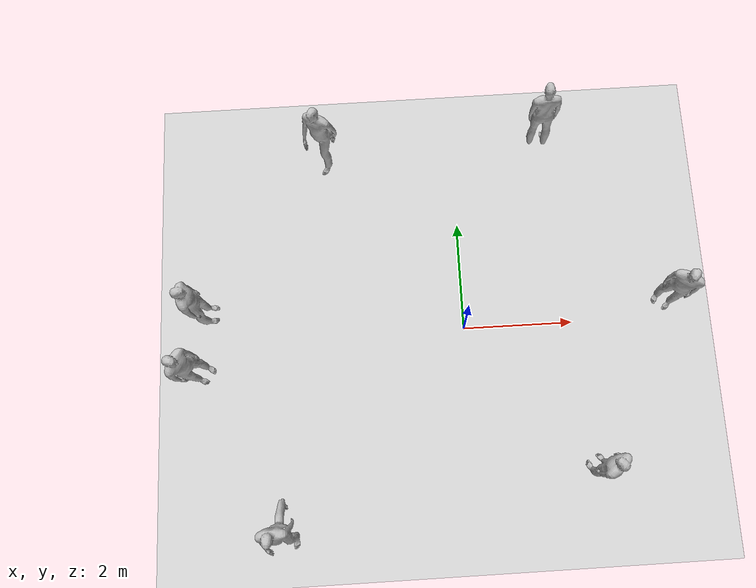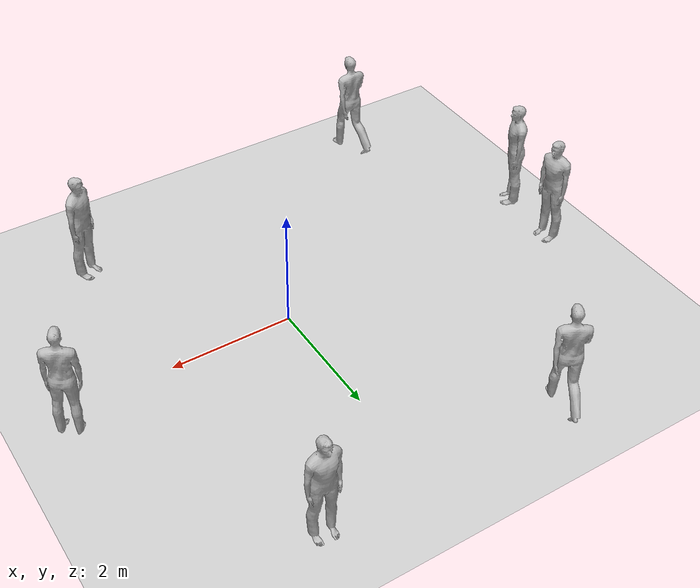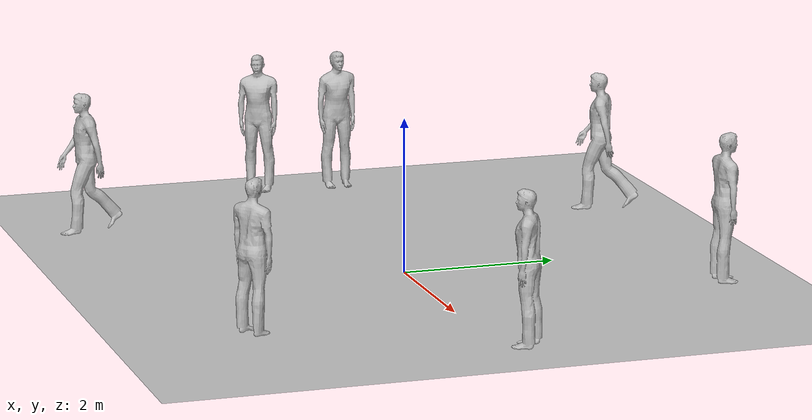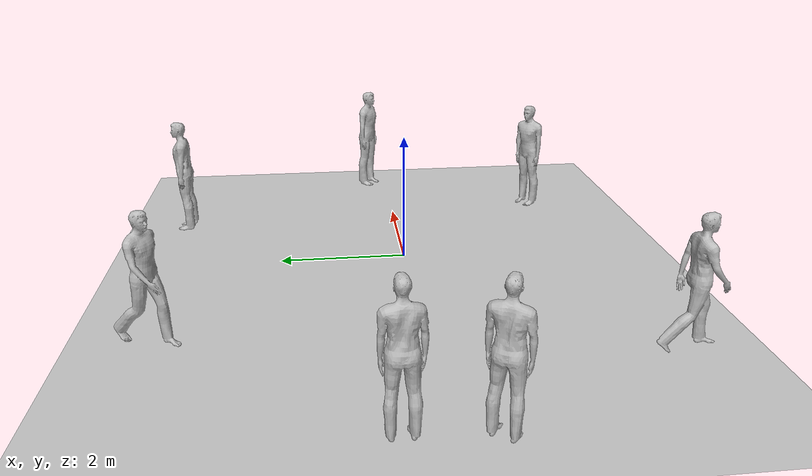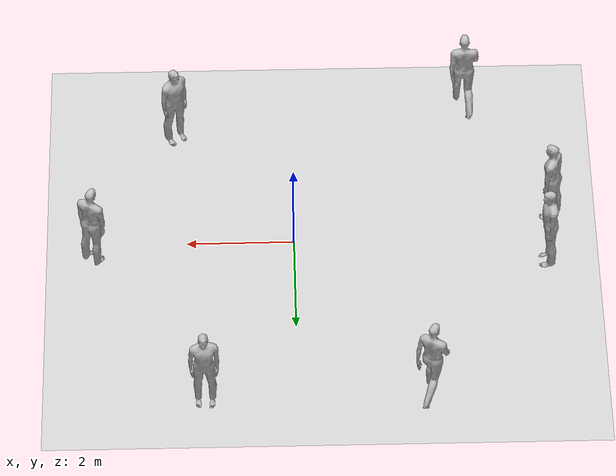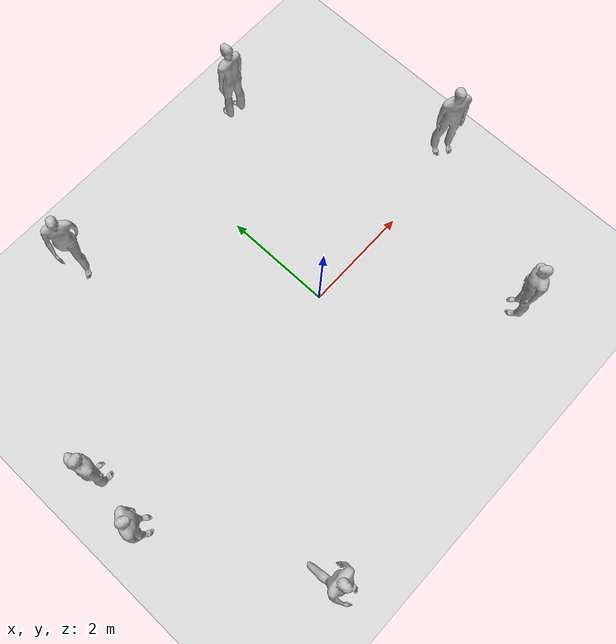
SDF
<sdf version="1.7">
 <world name="default">
  <light name="sun" type="directional">
   <pose>0 0 10 0 -0 0</pose>
   <diffuse>0.8 0.8 0.8 1</diffuse>
   <specular>0.2 0.2 0.2 1</specular>
   <attenuation>
    <range>1000</range>
    <constant>0.9</constant>
    <linear>0.01</linear>
    <quadratic>0.001</quadratic>
   </attenuation>
   <direction>-0.5 0.1 -0.9</direction>
   <spot><inner_angle>0</inner_angle><outer_angle>0</outer_angle><falloff>0</falloff></spot>
  </light>
  <model name="ground_plane">
   <static>1</static>
   <link name="link">
    <collision name="collision">
     <geometry><plane><normal>0 0 1</normal><size>100 100</size></plane></geometry>
     <surface><friction><ode><mu>100</mu><mu2>50</mu2></ode></friction></surface>
    </collision>
    <visual name="visual">
     <cast_shadows>0</cast_shadows>
     <geometry><plane><normal>0 0 1</normal><size>100 100</size></plane></geometry>
     <material>
      <script><uri>file://media/materials/scripts/gazebo.material</uri><name>Gazebo/Grey</name></script>
     </material>
    </visual>
   </link>
  </model>
  <gravity>0 0 -9.8</gravity>
  <magnetic_field>6e-06 2.3e-05 -4.2e-05</magnetic_field>
  <atmosphere type="adiabatic"/>
  <physics type="ode">
   <max_step_size>0.001</max_step_size>
   <real_time_factor>1</real_time_factor>
   <real_time_update_rate>1000</real_time_update_rate>
  </physics>
  <scene><ambient>0.4 0.4 0.4 1</ambient><background>0.7 0.7 0.7 1</background><shadows>1</shadows></scene>
  <spherical_coordinates>
   <surface_model>EARTH_WGS84</surface_model>
   <latitude_deg>0</latitude_deg>
   <longitude_deg>0</longitude_deg>
   <elevation>0</elevation>
   <heading_deg>0</heading_deg>
  </spherical_coordinates>
  <model name="person_standing">
   <link name="link">
    <inertial>
     <pose>0 -0.1 0.95 0 -0 0</pose>
     <mass>80</mass>
     <inertia><ixx>24.88</ixx><ixy>0</ixy><ixz>0</ixz><iyy>25.73</iyy><iyz>0</iyz><izz>2.48</izz></inertia>
    </inertial>
    <collision name="bottom">
     <pose>0 -0.1 0.01 0 -0 0</pose>
     <geometry><box><size>0.5 0.35 0.02</size></box></geometry>
    </collision>
    <collision name="person">
     <pose>0 0 0.02 0.04 -0 0</pose>
     <geometry><mesh><uri>model://person_standing/meshes/standing.dae</uri></mesh></geometry>
    </collision>
    <visual name="visual">
     <pose>0 0 0.02 0.04 -0 0</pose>
     <geometry><mesh><uri>model://person_standing/meshes/standing.dae</uri></mesh></geometry>
    </visual>
   </link>
   <pose>1.66247 3.60432 -1e-06 -1e-06 -1e-06 3.10091</pose>
  </model>
  <model name="person_standing_0">
   <link name="link">
    <inertial>
     <pose>0 -0.1 0.95 0 -0 0</pose>
     <mass>80</mass>
     <inertia><ixx>24.88</ixx><ixy>0</ixy><ixz>0</ixz><iyy>25.73</iyy><iyz>0</iyz><izz>2.48</izz></inertia>
    </inertial>
    <collision name="bottom">
     <pose>0 -0.1 0.01 0 -0 0</pose>
     <geometry><box><size>0.5 0.35 0.02</size></box></geometry>
    </collision>
    <collision name="person">
     <pose>0 0 0.02 0.04 -0 0</pose>
     <geometry><mesh><uri>model://person_standing/meshes/standing.dae</uri></mesh></geometry>
    </collision>
    <visual name="visual">
     <pose>0 0 0.02 0.04 -0 0</pose>
     <geometry><mesh><uri>model://person_standing/meshes/standing.dae</uri></mesh></geometry>
    </visual>
   </link>
   <pose>2.24945 -2.68798 -0 1e-06 1e-06 -2.57728</pose>
  </model>
  <model name="person_standing_1">
   <link name="link">
    <inertial>
     <pose>0 -0.1 0.95 0 -0 0</pose>
     <mass>80</mass>
     <inertia><ixx>24.88</ixx><ixy>0</ixy><ixz>0</ixz><iyy>25.73</iyy><iyz>0</iyz><izz>2.48</izz></inertia>
    </inertial>
    <collision name="bottom">
     <pose>0 -0.1 0.01 0 -0 0</pose>
     <geometry><box><size>0.5 0.35 0.02</size></box></geometry>
    </collision>
    <collision name="person">
     <pose>0 0 0.02 0.04 -0 0</pose>
     <geometry><mesh><uri>model://person_standing/meshes/standing.dae</uri></mesh></geometry>
    </collision>
    <visual name="visual">
     <pose>0 0 0.02 0.04 -0 0</pose>
     <geometry><mesh><uri>model://person_standing/meshes/standing.dae</uri></mesh></geometry>
    </visual>
   </link>
   <pose>3.76828 0.397065 -0 1e-06 -1e-06 -0.611263</pose>
  </model>
  <model name="person_standing_2">
   <link name="link">
    <inertial>
     <pose>0 -0.1 0.95 0 -0 0</pose>
     <mass>80</mass>
     <inertia><ixx>24.88</ixx><ixy>0</ixy><ixz>0</ixz><iyy>25.73</iyy><iyz>0</iyz><izz>2.48</izz></inertia>
    </inertial>
    <collision name="bottom">
     <pose>0 -0.1 0.01 0 -0 0</pose>
     <geometry><box><size>0.5 0.35 0.02</size></box></geometry>
    </collision>
    <collision name="person">
     <pose>0 0 0.02 0.04 -0 0</pose>
     <geometry><mesh><uri>model://person_standing/meshes/standing.dae</uri></mesh></geometry>
    </collision>
    <visual name="visual">
     <pose>0 0 0.02 0.04 -0 0</pose>
     <geometry><mesh><uri>model://person_standing/meshes/standing.dae</uri></mesh></geometry>
    </visual>
   </link>
   <pose>-4.77618 0.538441 -1e-06 -1e-06 -1e-06 1.59992</pose>
  </model>
  <model name="person_standing_3">
   <link name="link">
    <inertial>
     <pose>0 -0.1 0.95 0 -0 0</pose>
     <mass>80</mass>
     <inertia><ixx>24.88</ixx><ixy>0</ixy><ixz>0</ixz><iyy>25.73</iyy><iyz>0</iyz><izz>2.48</izz></inertia>
    </inertial>
    <collision name="bottom">
     <pose>0 -0.1 0.01 0 -0 0</pose>
     <geometry><box><size>0.5 0.35 0.02</size></box></geometry>
    </collision>
    <collision name="person">
     <pose>0 0 0.02 0.04 -0 0</pose>
     <geometry><mesh><uri>model://person_standing/meshes/standing.dae</uri></mesh></geometry>
    </collision>
    <visual name="visual">
     <pose>0 0 0.02 0.04 -0 0</pose>
     <geometry><mesh><uri>model://person_standing/meshes/standing.dae</uri></mesh></geometry>
    </visual>
   </link>
   <pose>-4.87263 -0.511117 0 1e-06 -1e-06 1.01189</pose>
  </model>
  <model name="person_walking">
   <link name="link">
    <inertial>
     <pose>0 0 0.95 0 -0 0</pose>
     <mass>80</mass>
     <inertia><ixx>27.82</ixx><ixy>0</ixy><ixz>0</ixz><iyy>24.88</iyy><iyz>0</iyz><izz>4.57</izz></inertia>
    </inertial>
    <collision name="bottom">
     <pose>0 0 0.01 0 -0 0</pose>
     <geometry><box><size>0.35 0.75 0.02</size></box></geometry>
    </collision>
    <collision name="person">
     <pose>0 0 -0.02 0 -0 0</pose>
     <geometry><mesh><uri>model://person_walking/meshes/walking.dae</uri></mesh></geometry>
    </collision>
    <visual name="visual">
     <pose>0 0 -0.02 0 -0 0</pose>
     <geometry><mesh><uri>model://person_walking/meshes/walking.dae</uri></mesh></geometry>
    </visual>
   </link>
   <pose>-3.29068 -3.32522 -0 0 -1e-06 0.000186</pose>
  </model>
  <model name="person_walking_clone">
   <link name="link">
    <inertial>
     <pose>0 0 0.95 0 -0 0</pose>
     <mass>80</mass>
     <inertia><ixx>27.82</ixx><ixy>0</ixy><ixz>0</ixz><iyy>24.88</iyy><iyz>0</iyz><izz>4.57</izz></inertia>
    </inertial>
    <collision name="bottom">
     <pose>0 0 0.01 0 -0 0</pose>
     <geometry><box><size>0.35 0.75 0.02</size></box></geometry>
    </collision>
    <collision name="person">
     <pose>0 0 -0.02 0 -0 0</pose>
     <geometry><mesh><uri>model://person_walking/meshes/walking.dae</uri></mesh></geometry>
    </collision>
    <visual name="visual">
     <pose>0 0 -0.02 0 -0 0</pose>
     <geometry><mesh><uri>model://person_walking/meshes/walking.dae</uri></mesh></geometry>
    </visual>
   </link>
   <pose>-2.39891 3.60012 0 -1e-06 -0 -0.523889</pose>
  </model>
 </world>
</sdf>
